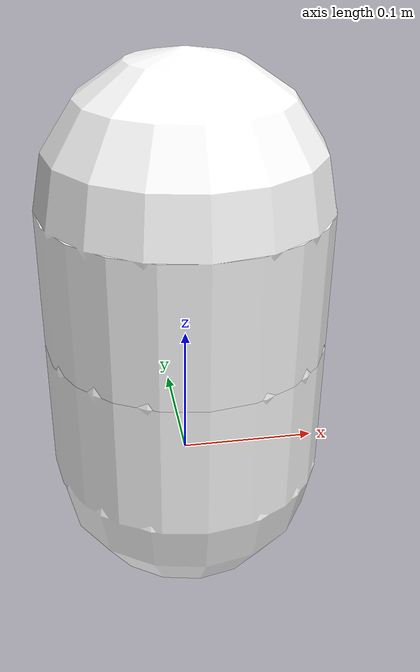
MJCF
<mujoco model="conkers">
  <compiler coordinate="local" inertiafromgeom="true"/>
  <default>
    <joint damping="0.05" stiffness="0.1"/>
    <geom contype="3" conaffinity="3" friction="1 0.1 0.1" rgba="0.7 0.7 0 1"/>
  </default>
  <option gravity="1e-5 0 -9.81" integrator="RK4" timestep="0.001"/>
  <size nstack="3000"/>
  <worldbody>
    <camera name="rgb" mode="fixed" pos="0 4 0.0" euler="-90 0 180"/>
    <body name="cart" pos="0 0 0">
      <joint axis="1 0 0" limited="true" margin="0.01" name="slider" pos="0 0 0" range="-20 20" stiffness="0" type="slide"/>
      <!--      the actuation in the conkers environment is identical to the one in cartpole with the cart
      attached to the top-most link/pole-->
      <geom name="cart" pos="0 0 0" quat="0.707 0 0.707 0" size="0.01 0.01" rgba="0 0 0 1" type="capsule" mass=".5"/>
      <body name="pole" pos="0 0 0">
        <joint axis="0 1 0" name="hinge" pos="0 0 0" type="hinge" stiffness="0"/>
        <geom fromto="0 0 0 0 0 0.1" name="gpole1" rgba="1 1 1 1" size="0.1 0.05" mass="0.05" type="capsule"/>
        <body name="pole2" pos="0 0 0.1">
          <joint axis="0 1 0" name="hinge2" pos="0 0 0" type="hinge"/>
          <geom fromto="0 0 0 0 0 0.1" name="gpole2" rgba="1 1 1 1" size="0.1 0.05" mass="0.05" type="capsule"/>
        </body>
      </body>
    </body>
  </worldbody>
  <actuator>
    <motor ctrllimited="true" ctrlrange="-1 1" gear="40" joint="slider" name="slide"/>
  </actuator>
</mujoco>
